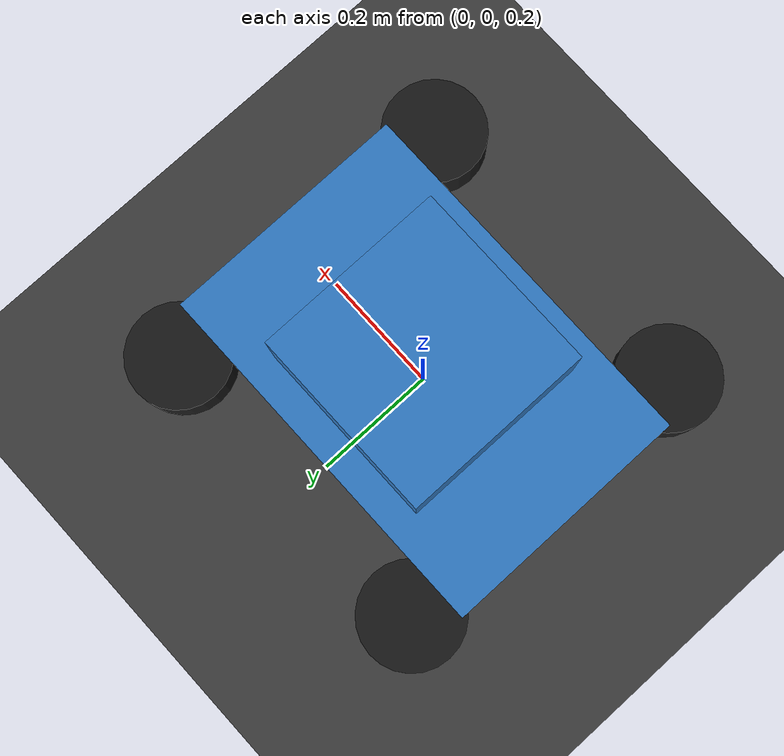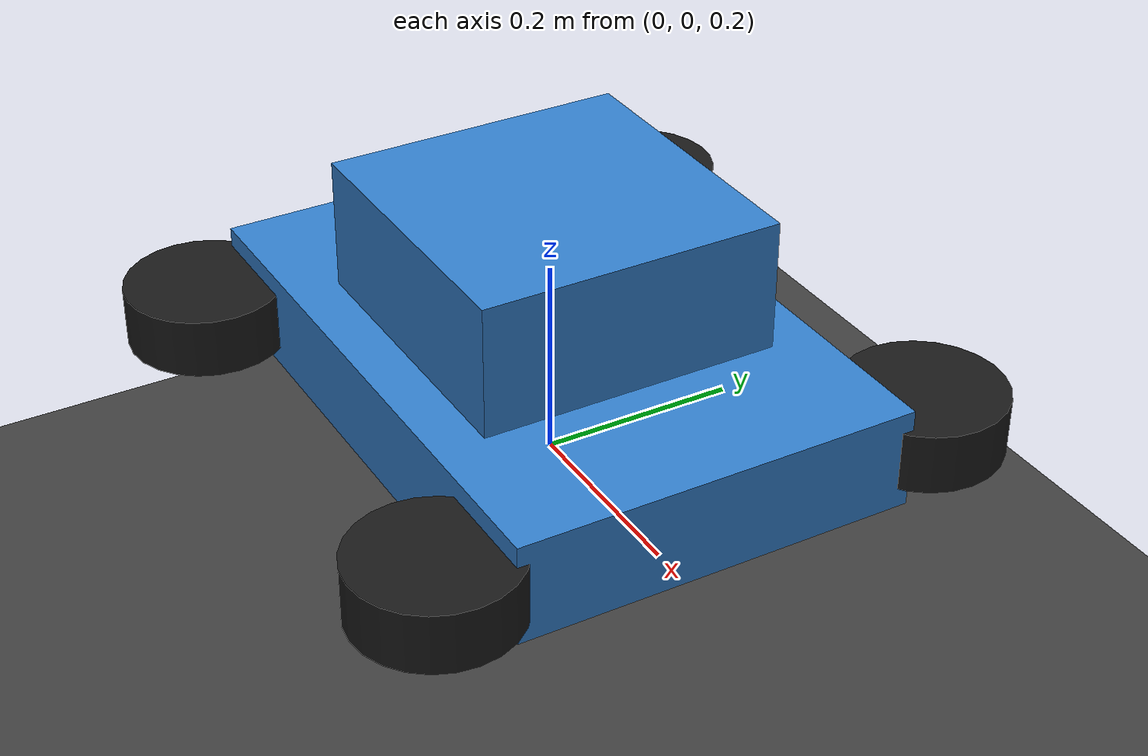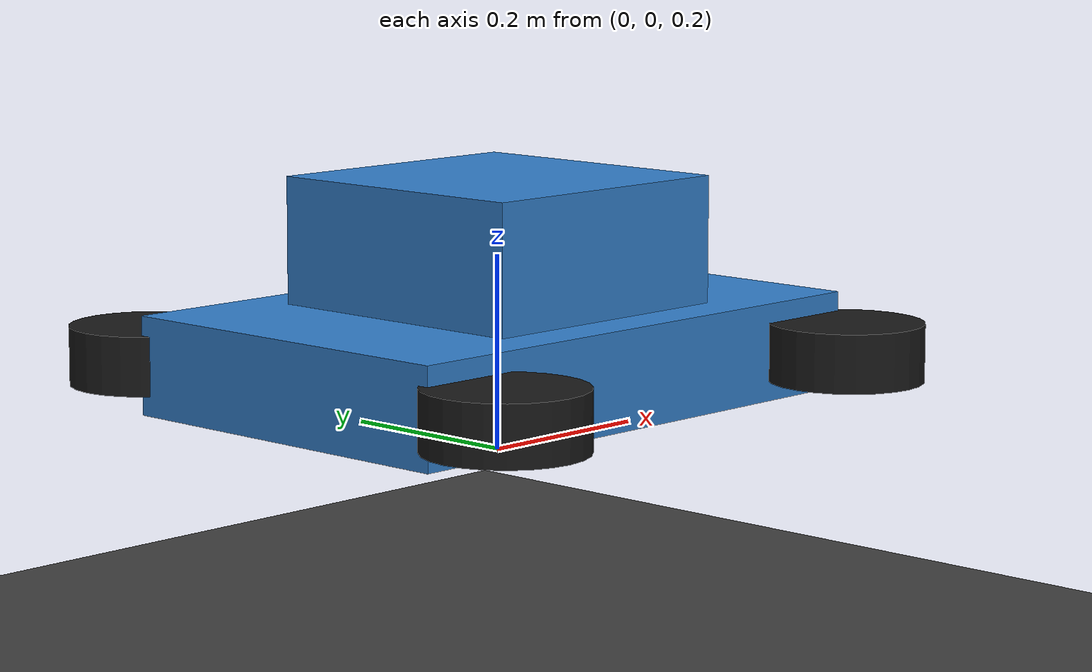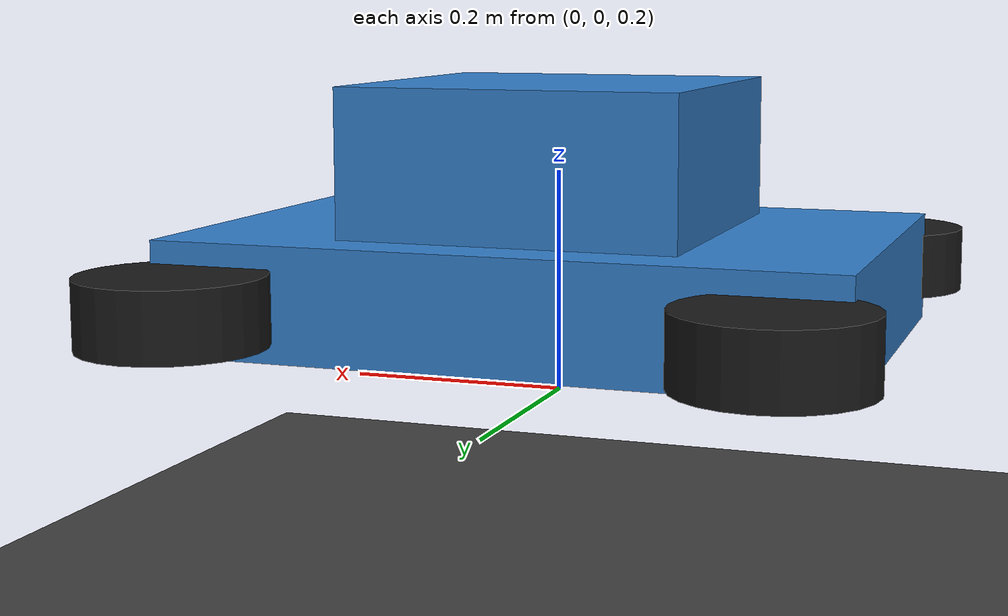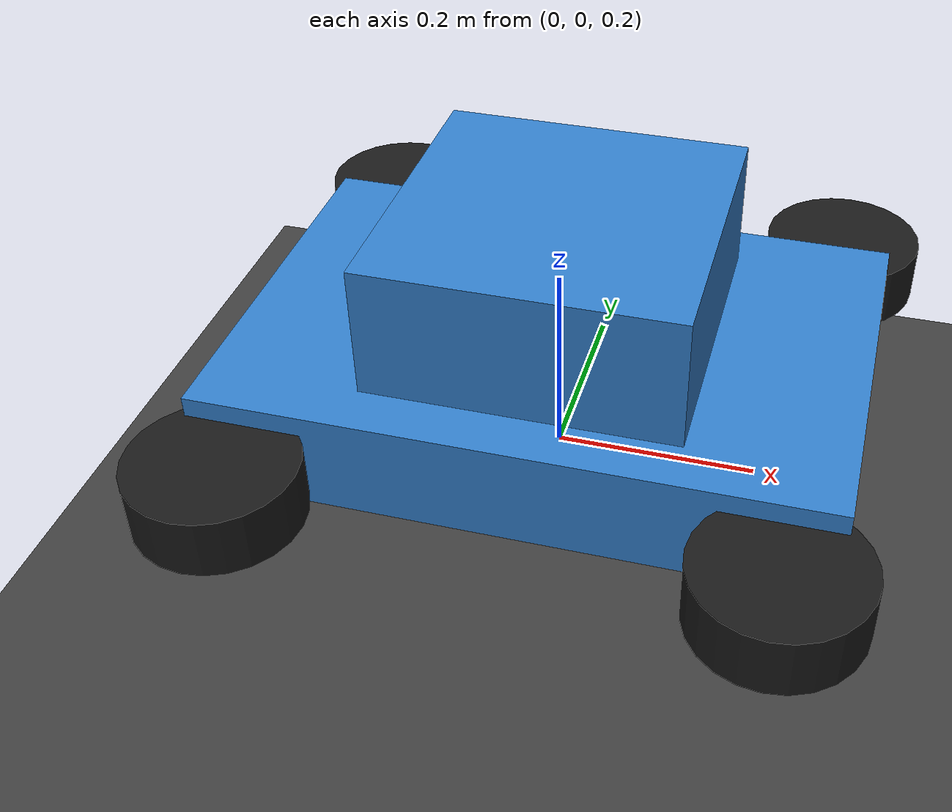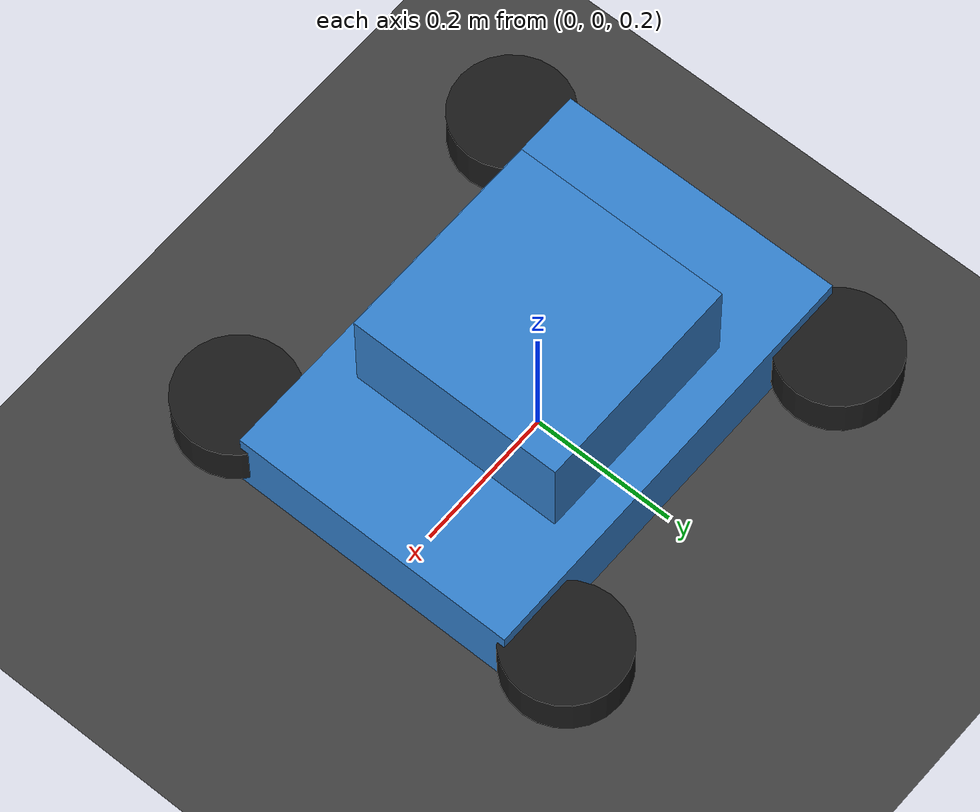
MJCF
<mujoco model="four_wheeler">
  <compiler angle="radian" autolimits="true"/>

  <option timestep="0.005" gravity="0 0 -9.81">
    <flag contact="enable" gravity="enable"/>
  </option>

  <asset>
    <texture name="grid" type="2d" builtin="checker" width="512" height="512" rgb1="0.2 0.2 0.2" rgb2="0.3 0.3 0.3"/>
    <material name="grid" texture="grid" texrepeat="2 2" texuniform="true" reflectance="0.1"/>
    <material name="chassis" rgba="0.2 0.5 0.8 1"/>
    <material name="wheel" rgba="0.1 0.1 0.1 1"/>
  </asset>

  <worldbody>
    <light pos="0 0 3" dir="0 0 -1" diffuse="0.8 0.8 0.8"/>
    <geom name="floor" type="plane" size="10 10 0.1" material="grid" condim="3" friction="1 0.005 0.0001"/>

    <!-- Main Chassis -->
    <body name="chassis" pos="0 0 0.3">
      <freejoint/>
      <geom name="chassis_main" type="box" size="0.3 0.2 0.05" material="chassis" mass="5"/>
      <geom name="chassis_top" type="box" size="0.15 0.15 0.08" pos="0 0 0.1" material="chassis" mass="1"/>

      <!-- Front Left Wheel -->
      <body name="front_left_wheel" pos="0.25 0.25 0">
        <joint name="fl_wheel" type="hinge" axis="0 1 0" damping="0.1"/>
        <geom name="fl_wheel_geom" type="cylinder" size="0.08 0.03" rgba="0.1 0.1 0.1 1" mass="0.5" friction="1.5 0.005 0.0001"/>
      </body>

      <!-- Front Right Wheel -->
      <body name="front_right_wheel" pos="0.25 -0.25 0">
        <joint name="fr_wheel" type="hinge" axis="0 1 0" damping="0.1"/>
        <geom name="fr_wheel_geom" type="cylinder" size="0.08 0.03" rgba="0.1 0.1 0.1 1" mass="0.5" friction="1.5 0.005 0.0001"/>
      </body>

      <!-- Rear Left Wheel -->
      <body name="rear_left_wheel" pos="-0.25 0.25 0">
        <joint name="rl_wheel" type="hinge" axis="0 1 0" damping="0.1"/>
        <geom name="rl_wheel_geom" type="cylinder" size="0.08 0.03" rgba="0.1 0.1 0.1 1" mass="0.5" friction="1.5 0.005 0.0001"/>
      </body>

      <!-- Rear Right Wheel -->
      <body name="rear_right_wheel" pos="-0.25 -0.25 0">
        <joint name="rr_wheel" type="hinge" axis="0 1 0" damping="0.1"/>
        <geom name="rr_wheel_geom" type="cylinder" size="0.08 0.03" rgba="0.1 0.1 0.1 1" mass="0.5" friction="1.5 0.005 0.0001"/>
      </body>
    </body>
  </worldbody>

  <actuator>
    <velocity name="fl_motor" joint="fl_wheel" kv="10" gear="1" ctrllimited="true" ctrlrange="-10 10"/>
    <velocity name="fr_motor" joint="fr_wheel" kv="10" gear="1" ctrllimited="true" ctrlrange="-10 10"/>
    <velocity name="rl_motor" joint="rl_wheel" kv="10" gear="1" ctrllimited="true" ctrlrange="-10 10"/>
    <velocity name="rr_motor" joint="rr_wheel" kv="10" gear="1" ctrllimited="true" ctrlrange="-10 10"/>
  </actuator>

  <sensor>
    <framepos name="chassis_pos" objtype="body" objname="chassis"/>
    <framelinvel name="chassis_vel" objtype="body" objname="chassis"/>
  </sensor>
</mujoco>
